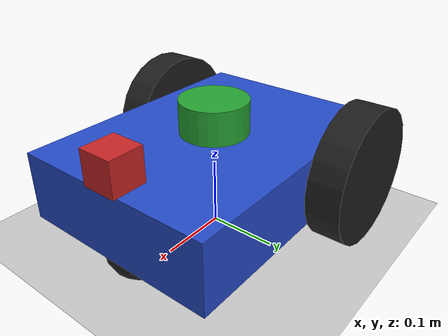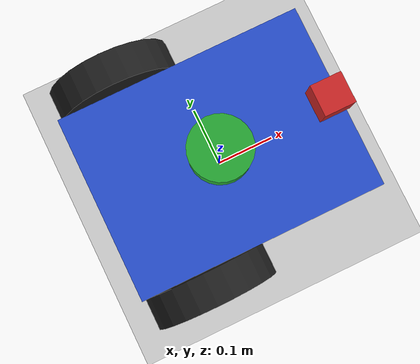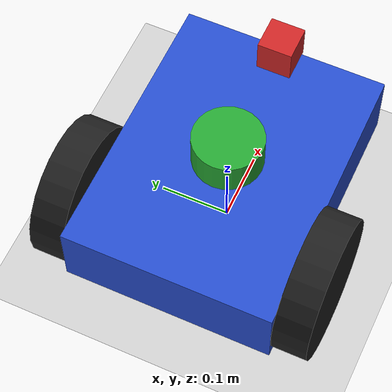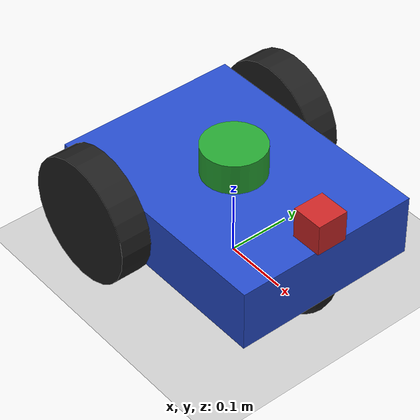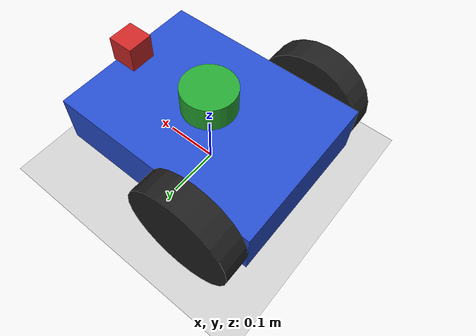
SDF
<sdf version='1.10'>
  <world name='empty'>
    <physics name='1ms' type='ignored'>
      <max_step_size>0.001</max_step_size>
      <real_time_factor>1</real_time_factor>
      <real_time_update_rate>1000</real_time_update_rate>
    </physics>
    <plugin name='gz::sim::systems::Physics' filename='gz-sim-physics-system'/>
    <plugin name='gz::sim::systems::UserCommands' filename='gz-sim-user-commands-system'/>
    <plugin name='gz::sim::systems::SceneBroadcaster' filename='gz-sim-scene-broadcaster-system'/>
    <plugin name='gz::sim::systems::Contact' filename='gz-sim-contact-system'/>
    <gravity>0 0 -9.8000000000000007</gravity>
    <magnetic_field>5.5644999999999998e-06 2.2875799999999999e-05 -4.2388400000000002e-05</magnetic_field>
    <atmosphere type='adiabatic'/>
    <scene>
      <ambient>0.400000006 0.400000006 0.400000006 1</ambient>
      <background>0.699999988 0.699999988 0.699999988 1</background>
      <shadows>true</shadows>
    </scene>
    <model name='ground_plane'>
      <static>true</static>
      <link name='link'>
        <collision name='collision'>
          <geometry>
            <plane>
              <normal>0 0 1</normal>
              <size>100 100</size>
            </plane>
          </geometry>
          <surface>
            <friction>
              <ode/>
            </friction>
            <bounce/>
            <contact/>
          </surface>
        </collision>
        <visual name='visual'>
          <geometry>
            <plane>
              <normal>0 0 1</normal>
              <size>100 100</size>
            </plane>
          </geometry>
          <material>
            <ambient>0.800000012 0.800000012 0.800000012 1</ambient>
            <diffuse>0.800000012 0.800000012 0.800000012 1</diffuse>
            <specular>0.800000012 0.800000012 0.800000012 1</specular>
          </material>
        </visual>
        <pose>0 0 0 0 0 0</pose>
        <inertial>
          <pose>0 0 0 0 0 0</pose>
          <mass>1</mass>
          <inertia>
            <ixx>1</ixx>
            <ixy>0</ixy>
            <ixz>0</ixz>
            <iyy>1</iyy>
            <iyz>0</iyz>
            <izz>1</izz>
          </inertia>
        </inertial>
        <enable_wind>false</enable_wind>
      </link>
      <pose>0 0 0 0 0 0</pose>
      <self_collide>false</self_collide>
    </model>
    <model name='visiobot'>
      <link name='base_link'>
        <inertial>
          <pose>0.017368421052631582 0 0.0092105263157894728 0 0 0</pose>
          <mass>1.8999999999999999</mass>
          <inertia>
            <ixx>0.01458464912280702</ixx>
            <ixy>0</ixy>
            <ixz>-0.00029605263157894739</ixz>
            <iyy>0.028251491228070181</iyy>
            <iyz>0</iyz>
            <izz>0.036558508771929822</izz>
          </inertia>
        </inertial>
        <collision name='base_link_collision'>
          <pose>0 0 0 0 0 0</pose>
          <geometry>
            <box>
              <size>0.40000000000000002 0.29999999999999999 0.10000000000000001</size>
            </box>
          </geometry>
          <surface>
            <contact>
              <ode/>
            </contact>
            <friction>
              <ode/>
            </friction>
            <bounce/>
          </surface>
        </collision>
        <collision name='base_link_fixed_joint_lump__camera_link_collision_1'>
          <pose>0.17999999999999999 0 0.074999999999999997 0 0 0</pose>
          <geometry>
            <box>
              <size>0.050000000000000003 0.050000000000000003 0.050000000000000003</size>
            </box>
          </geometry>
          <surface>
            <contact>
              <ode/>
            </contact>
            <friction>
              <ode/>
            </friction>
            <bounce/>
          </surface>
        </collision>
        <collision name='base_link_fixed_joint_lump__caster_wheel_collision_2'>
          <pose>0.14999999999999999 0 -0.050000000000000003 0 0 0</pose>
          <geometry>
            <sphere>
              <radius>0.050000000000000003</radius>
            </sphere>
          </geometry>
          <surface>
            <friction>
              <ode/>
            </friction>
            <bounce/>
            <contact/>
          </surface>
        </collision>
        <collision name='base_link_fixed_joint_lump__laser_link_collision_3'>
          <pose>0 0 0.074999999999999997 0 0 0</pose>
          <geometry>
            <cylinder>
              <length>0.050000000000000003</length>
              <radius>0.050000000000000003</radius>
            </cylinder>
          </geometry>
          <surface>
            <contact>
              <ode/>
            </contact>
            <friction>
              <ode/>
            </friction>
            <bounce/>
          </surface>
        </collision>
        <visual name='base_link_visual'>
          <pose>0 0 0 0 0 0</pose>
          <geometry>
            <box>
              <size>0.40000000000000002 0.29999999999999999 0.10000000000000001</size>
            </box>
          </geometry>
          <material>
            <script>
              <name>Gazebo/Blue</name>
              <uri>file://media/materials/scripts/gazebo.material</uri>
            </script>
            <diffuse>0 0.25 1 1</diffuse>
            <ambient>0 0.25 1 1</ambient>
          </material>
        </visual>
        <visual name='base_link_fixed_joint_lump__camera_link_visual_1'>
          <pose>0.17999999999999999 0 0.074999999999999997 0 0 0</pose>
          <geometry>
            <box>
              <size>0.050000000000000003 0.050000000000000003 0.050000000000000003</size>
            </box>
          </geometry>
          <material>
            <script>
              <name>Gazebo/Red</name>
              <uri>file://media/materials/scripts/gazebo.material</uri>
            </script>
            <diffuse>1 0 0 1</diffuse>
            <ambient>1 0 0 1</ambient>
          </material>
        </visual>
        <visual name='base_link_fixed_joint_lump__caster_wheel_visual_2'>
          <pose>0.14999999999999999 0 -0.050000000000000003 0 0 0</pose>
          <geometry>
            <sphere>
              <radius>0.050000000000000003</radius>
            </sphere>
          </geometry>
          <material>
            <diffuse>0.125 0.125 0.125 1</diffuse>
            <ambient>0.125 0.125 0.125 1</ambient>
          </material>
        </visual>
        <visual name='base_link_fixed_joint_lump__laser_link_visual_3'>
          <pose>0 0 0.074999999999999997 0 0 0</pose>
          <geometry>
            <cylinder>
              <length>0.050000000000000003</length>
              <radius>0.050000000000000003</radius>
            </cylinder>
          </geometry>
          <material>
            <script>
              <name>Gazebo/Green</name>
              <uri>file://media/materials/scripts/gazebo.material</uri>
            </script>
            <diffuse>0 1 0 1</diffuse>
            <ambient>0 1 0 1</ambient>
          </material>
        </visual>
        <pose>0 0 0 0 0 0</pose>
        <enable_wind>false</enable_wind>
      </link>
      <joint name='base_to_left_wheel' type='revolute'>
        <pose>0 -1.3877787807814457e-17 2.7755575615628914e-17 0 0 0</pose>
        <parent>base_link</parent>
        <child>left_wheel</child>
        <axis>
          <xyz>0 0 1</xyz>
          <limit>
            <lower>-inf</lower>
            <upper>inf</upper>
            <effort>inf</effort>
            <velocity>inf</velocity>
            <stiffness>100000000</stiffness>
            <dissipation>1</dissipation>
          </limit>
          <dynamics>
            <spring_reference>0</spring_reference>
            <spring_stiffness>0</spring_stiffness>
            <damping>0</damping>
            <friction>0</friction>
          </dynamics>
        </axis>
      </joint>
      <link name='left_wheel'>
        <pose>-0.099999999999999992 0.17500000000000002 -1.3877787807814457e-17 -1.5708000000000006 -4.5414799076169714e-14 1.6680990493589402e-19</pose>
        <inertial>
          <pose>0 0 0 0 0 0</pose>
          <mass>0.29999999999999999</mass>
          <inertia>
            <ixx>0.00081250000000000018</ixx>
            <ixy>0</ixy>
            <ixz>0</ixz>
            <iyy>0.00081250000000000018</iyy>
            <iyz>0</iyz>
            <izz>0.0015</izz>
          </inertia>
        </inertial>
        <collision name='left_wheel_collision'>
          <pose>0 0 0 0 0 0</pose>
          <geometry>
            <cylinder>
              <length>0.050000000000000003</length>
              <radius>0.10000000000000001</radius>
            </cylinder>
          </geometry>
          <surface>
            <contact>
              <ode/>
            </contact>
            <friction>
              <ode/>
            </friction>
            <bounce/>
          </surface>
        </collision>
        <visual name='left_wheel_visual'>
          <pose>0 0 0 0 0 0</pose>
          <geometry>
            <cylinder>
              <length>0.050000000000000003</length>
              <radius>0.10000000000000001</radius>
            </cylinder>
          </geometry>
          <material>
            <script>
              <name>Gazebo/Black</name>
              <uri>file://media/materials/scripts/gazebo.material</uri>
            </script>
            <diffuse>0.125 0.125 0.125 1</diffuse>
            <ambient>0.125 0.125 0.125 1</ambient>
          </material>
        </visual>
        <enable_wind>false</enable_wind>
      </link>
      <joint name='base_to_right_wheel' type='revolute'>
        <pose>0 1.3877787807814457e-17 2.7755575615628914e-17 0 0 0</pose>
        <parent>base_link</parent>
        <child>right_wheel</child>
        <axis>
          <xyz>0 0 1</xyz>
          <limit>
            <lower>-inf</lower>
            <upper>inf</upper>
            <effort>inf</effort>
            <velocity>inf</velocity>
            <stiffness>100000000</stiffness>
            <dissipation>1</dissipation>
          </limit>
          <dynamics>
            <spring_reference>0</spring_reference>
            <spring_stiffness>0</spring_stiffness>
            <damping>0</damping>
            <friction>0</friction>
          </dynamics>
        </axis>
      </joint>
      <link name='right_wheel'>
        <pose>-0.099999999999999992 -0.17500000000000002 -1.3877787807814457e-17 1.5708000000000006 -4.5414741240149471e-14 -1.6685084785817138e-19</pose>
        <inertial>
          <pose>0 0 0 0 0 0</pose>
          <mass>0.29999999999999999</mass>
          <inertia>
            <ixx>0.00081250000000000018</ixx>
            <ixy>0</ixy>
            <ixz>0</ixz>
            <iyy>0.00081250000000000018</iyy>
            <iyz>0</iyz>
            <izz>0.0015</izz>
          </inertia>
        </inertial>
        <collision name='right_wheel_collision'>
          <pose>0 0 0 0 0 0</pose>
          <geometry>
            <cylinder>
              <length>0.050000000000000003</length>
              <radius>0.10000000000000001</radius>
            </cylinder>
          </geometry>
          <surface>
            <contact>
              <ode/>
            </contact>
            <friction>
              <ode/>
            </friction>
            <bounce/>
          </surface>
        </collision>
        <visual name='right_wheel_visual'>
          <pose>0 0 0 0 0 0</pose>
          <geometry>
            <cylinder>
              <length>0.050000000000000003</length>
              <radius>0.10000000000000001</radius>
            </cylinder>
          </geometry>
          <material>
            <script>
              <name>Gazebo/Black</name>
              <uri>file://media/materials/scripts/gazebo.material</uri>
            </script>
            <diffuse>0.125 0.125 0.125 1</diffuse>
            <ambient>0.125 0.125 0.125 1</ambient>
          </material>
        </visual>
        <enable_wind>false</enable_wind>
      </link>
      <plugin name='gz::sim::systems::DiffDrive' filename='gz-sim-diff-drive-system'>
        <left_joint>base_to_left_wheel</left_joint>
        <right_joint>base_to_right_wheel</right_joint>
        <wheel_separation>0.35</wheel_separation>
        <wheel_radius>0.1</wheel_radius>
        <topic>cmd_vel</topic>
        <odom_topic>odom</odom_topic>
        <frame_id>odom</frame_id>
        <child_frame_id>base_link</child_frame_id>
      </plugin>
      <frame name='base_to_camera' attached_to='base_link'>
        <pose>0.17999999999999999 0 0.074999999999999997 0 0 0</pose>
      </frame>
      <frame name='camera_link' attached_to='base_to_camera'>
        <pose>0 0 0 0 0 0</pose>
      </frame>
      <frame name='base_to_caster' attached_to='base_link'>
        <pose>0.14999999999999999 0 -0.050000000000000003 0 0 0</pose>
      </frame>
      <frame name='caster_wheel' attached_to='base_to_caster'>
        <pose>0 0 0 0 0 0</pose>
      </frame>
      <frame name='base_to_laser' attached_to='base_link'>
        <pose>0 0 0.074999999999999997 0 0 0</pose>
      </frame>
      <frame name='laser_link' attached_to='base_to_laser'>
        <pose>0 0 0 0 0 0</pose>
      </frame>
      <pose>3.4862553476207481e-08 9.1491399387447554e-20 0.099999215725669471 -2.6886129759028963e-19 3.4893053823637178e-07 -1.665417551917559e-19</pose>
      <static>false</static>
      <self_collide>false</self_collide>
    </model>
    <light name='sun' type='directional'>
      <pose>0 0 10 0 0 0</pose>
      <cast_shadows>true</cast_shadows>
      <intensity>1</intensity>
      <direction>-0.5 0.10000000000000001 -0.90000000000000002</direction>
      <diffuse>0.800000012 0.800000012 0.800000012 1</diffuse>
      <specular>0.200000003 0.200000003 0.200000003 1</specular>
      <attenuation>
        <range>1000</range>
        <linear>0.01</linear>
        <constant>0.90000000000000002</constant>
        <quadratic>0.001</quadratic>
      </attenuation>
      <spot>
        <inner_angle>0</inner_angle>
        <outer_angle>0</outer_angle>
        <falloff>0</falloff>
      </spot>
    </light>
  </world>
</sdf>
